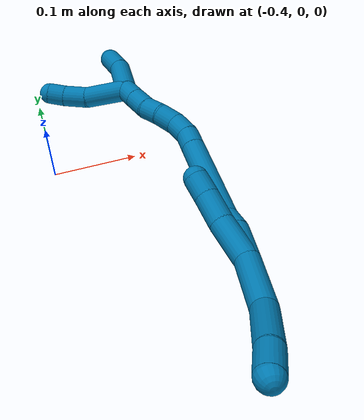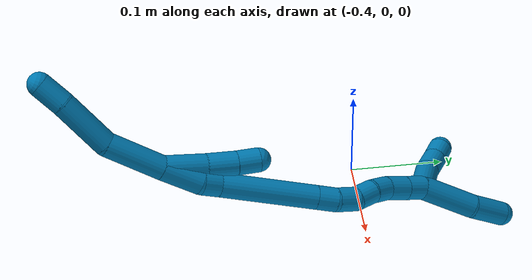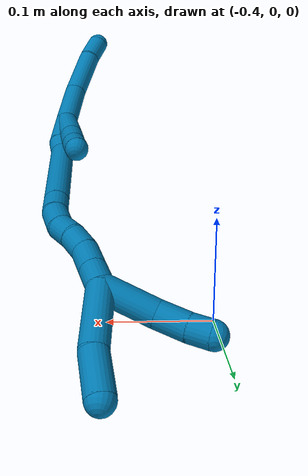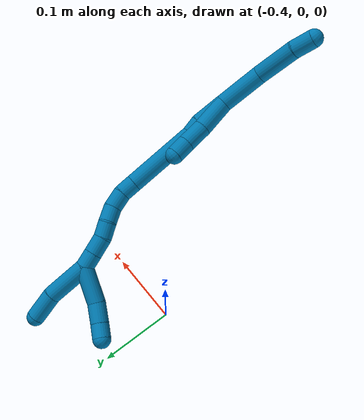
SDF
<sdf version="1.7">
 <world name="default">
  <model name="9">
   <static>0</static>
   <link name="9">
    <collision name="collision-cylinder-e_1_2_8">
     <pose>-0.001383 0.000201 0.030885 -0.006504 -0.044745 0.000146</pose>
     <geometry><cylinder><radius>0.0125</radius><length>0.061833</length></cylinder></geometry>
     <surface>
      <friction><ode><mu>1.16</mu><mu2>1.16</mu2><slip1>0</slip1><slip2>0</slip2></ode></friction>
      <contact><ode><kp>1e+06</kp><kd>1</kd><max_vel>0</max_vel><min_depth>0.001</min_depth></ode></contact>
     </surface>
    </collision>
    <visual name="visual-cylinder-e_1_2_8">
     <pose>-0.001383 0.000201 0.030885 -0.006504 -0.044745 0.000146</pose>
     <geometry><cylinder><radius>0.0125</radius><length>0.061833</length></cylinder></geometry>
     <material><ambient>0 0.490196 0.709804 1</ambient></material>
    </visual>
    <collision name="collision-cylinder-e_2_8_9">
     <pose>-0.001224 0.010143 0.089464 -0.338248 0.052462 -0.00896</pose>
     <geometry><cylinder><radius>0.0125</radius><length>0.058795</length></cylinder></geometry>
     <surface>
      <friction><ode><mu>1.16</mu><mu2>1.16</mu2><slip1>0</slip1><slip2>0</slip2></ode></friction>
      <contact><ode><kp>1e+06</kp><kd>1</kd><max_vel>0</max_vel><min_depth>0.001</min_depth></ode></contact>
     </surface>
    </collision>
    <visual name="visual-cylinder-e_2_8_9">
     <pose>-0.001224 0.010143 0.089464 -0.338248 0.052462 -0.00896</pose>
     <geometry><cylinder><radius>0.0125</radius><length>0.058795</length></cylinder></geometry>
     <material><ambient>0 0.490196 0.709804 1</ambient></material>
    </visual>
    <collision name="collision-cylinder-e_3_9_6">
     <pose>-0.000978 0.024345 0.131089 -0.309811 -0.088293 0.013796</pose>
     <geometry><cylinder><radius>0.0125</radius><length>0.029372</length></cylinder></geometry>
     <surface>
      <friction><ode><mu>1.16</mu><mu2>1.16</mu2><slip1>0</slip1><slip2>0</slip2></ode></friction>
      <contact><ode><kp>1e+06</kp><kd>1</kd><max_vel>0</max_vel><min_depth>0.001</min_depth></ode></contact>
     </surface>
    </collision>
    <visual name="visual-cylinder-e_3_9_6">
     <pose>-0.000978 0.024345 0.131089 -0.309811 -0.088293 0.013796</pose>
     <geometry><cylinder><radius>0.0125</radius><length>0.029372</length></cylinder></geometry>
     <material><ambient>0 0.490196 0.709804 1</ambient></material>
    </visual>
    <collision name="collision-cylinder-e_1_2_10">
     <pose>0.000515 0.009408 -0.020595 -2.7131 0.022723 -0.10434</pose>
     <geometry><cylinder><radius>0.0125</radius><length>0.045297</length></cylinder></geometry>
     <surface>
      <friction><ode><mu>1.16</mu><mu2>1.16</mu2><slip1>0</slip1><slip2>0</slip2></ode></friction>
      <contact><ode><kp>1e+06</kp><kd>1</kd><max_vel>0</max_vel><min_depth>0.001</min_depth></ode></contact>
     </surface>
    </collision>
    <visual name="visual-cylinder-e_1_2_10">
     <pose>0.000515 0.009408 -0.020595 -2.7131 0.022723 -0.10434</pose>
     <geometry><cylinder><radius>0.0125</radius><length>0.045297</length></cylinder></geometry>
     <material><ambient>0 0.490196 0.709804 1</ambient></material>
    </visual>
    <collision name="collision-cylinder-e_2_10_11">
     <pose>0.003101 0.025842 -0.0552 -2.67677 0.13143 -0.542384</pose>
     <geometry><cylinder><radius>0.0125</radius><length>0.031618</length></cylinder></geometry>
     <surface>
      <friction><ode><mu>1.16</mu><mu2>1.16</mu2><slip1>0</slip1><slip2>0</slip2></ode></friction>
      <contact><ode><kp>1e+06</kp><kd>1</kd><max_vel>0</max_vel><min_depth>0.001</min_depth></ode></contact>
     </surface>
    </collision>
    <visual name="visual-cylinder-e_2_10_11">
     <pose>0.003101 0.025842 -0.0552 -2.67677 0.13143 -0.542384</pose>
     <geometry><cylinder><radius>0.0125</radius><length>0.031618</length></cylinder></geometry>
     <material><ambient>0 0.490196 0.709804 1</ambient></material>
    </visual>
    <collision name="collision-cylinder-e_3_11_5">
     <pose>0.006691 0.038593 -0.079117 -2.61754 0.131891 -0.48288</pose>
     <geometry><cylinder><radius>0.0125</radius><length>0.023086</length></cylinder></geometry>
     <surface>
      <friction><ode><mu>1.16</mu><mu2>1.16</mu2><slip1>0</slip1><slip2>0</slip2></ode></friction>
      <contact><ode><kp>1e+06</kp><kd>1</kd><max_vel>0</max_vel><min_depth>0.001</min_depth></ode></contact>
     </surface>
    </collision>
    <visual name="visual-cylinder-e_3_11_5">
     <pose>0.006691 0.038593 -0.079117 -2.61754 0.131891 -0.48288</pose>
     <geometry><cylinder><radius>0.0125</radius><length>0.023086</length></cylinder></geometry>
     <material><ambient>0 0.490196 0.709804 1</ambient></material>
    </visual>
    <collision name="collision-cylinder-e_1_2_12">
     <pose>0.001035 0.000529 -0.020907 -3.11628 0.049447 -2.19533</pose>
     <geometry><cylinder><radius>0.0125</radius><length>0.041878</length></cylinder></geometry>
     <surface>
      <friction><ode><mu>1.16</mu><mu2>1.16</mu2><slip1>0</slip1><slip2>0</slip2></ode></friction>
      <contact><ode><kp>1e+06</kp><kd>1</kd><max_vel>0</max_vel><min_depth>0.001</min_depth></ode></contact>
     </surface>
    </collision>
    <visual name="visual-cylinder-e_1_2_12">
     <pose>0.001035 0.000529 -0.020907 -3.11628 0.049447 -2.19533</pose>
     <geometry><cylinder><radius>0.0125</radius><length>0.041878</length></cylinder></geometry>
     <material><ambient>0 0.490196 0.709804 1</ambient></material>
    </visual>
    <collision name="collision-cylinder-e_2_12_13">
     <pose>0.001059 0.003857 -0.051515 -2.8608 -0.099781 0.679237</pose>
     <geometry><cylinder><radius>0.0125</radius><length>0.020295</length></cylinder></geometry>
     <surface>
      <friction><ode><mu>1.16</mu><mu2>1.16</mu2><slip1>0</slip1><slip2>0</slip2></ode></friction>
      <contact><ode><kp>1e+06</kp><kd>1</kd><max_vel>0</max_vel><min_depth>0.001</min_depth></ode></contact>
     </surface>
    </collision>
    <visual name="visual-cylinder-e_2_12_13">
     <pose>0.001059 0.003857 -0.051515 -2.8608 -0.099781 0.679237</pose>
     <geometry><cylinder><radius>0.0125</radius><length>0.020295</length></cylinder></geometry>
     <material><ambient>0 0.490196 0.709804 1</ambient></material>
    </visual>
    <collision name="collision-cylinder-e_3_13_14">
     <pose>0.005395 0.019208 -0.110468 -2.89203 0.104815 -0.792173</pose>
     <geometry><cylinder><radius>0.0125</radius><length>0.102212</length></cylinder></geometry>
     <surface>
      <friction><ode><mu>1.16</mu><mu2>1.16</mu2><slip1>0</slip1><slip2>0</slip2></ode></friction>
      <contact><ode><kp>1e+06</kp><kd>1</kd><max_vel>0</max_vel><min_depth>0.001</min_depth></ode></contact>
     </surface>
    </collision>
    <visual name="visual-cylinder-e_3_13_14">
     <pose>0.005395 0.019208 -0.110468 -2.89203 0.104815 -0.792173</pose>
     <geometry><cylinder><radius>0.0125</radius><length>0.102212</length></cylinder></geometry>
     <material><ambient>0 0.490196 0.709804 1</ambient></material>
    </visual>
    <collision name="collision-cylinder-e_4_14_15">
     <pose>0.011844 0.034341 -0.169942 -2.89444 0.10416 -0.794686</pose>
     <geometry><cylinder><radius>0.0125</radius><length>0.021203</length></cylinder></geometry>
     <surface>
      <friction><ode><mu>1.16</mu><mu2>1.16</mu2><slip1>0</slip1><slip2>0</slip2></ode></friction>
      <contact><ode><kp>1e+06</kp><kd>1</kd><max_vel>0</max_vel><min_depth>0.001</min_depth></ode></contact>
     </surface>
    </collision>
    <visual name="visual-cylinder-e_4_14_15">
     <pose>0.011844 0.034341 -0.169942 -2.89444 0.10416 -0.794686</pose>
     <geometry><cylinder><radius>0.0125</radius><length>0.021203</length></cylinder></geometry>
     <material><ambient>0 0.490196 0.709804 1</ambient></material>
    </visual>
    <collision name="collision-cylinder-e_5_15_16">
     <pose>0.011565 0.041781 -0.19092 -2.71706 -0.116543 0.52871</pose>
     <geometry><cylinder><radius>0.0125</radius><length>0.023764</length></cylinder></geometry>
     <surface>
      <friction><ode><mu>1.16</mu><mu2>1.16</mu2><slip1>0</slip1><slip2>0</slip2></ode></friction>
      <contact><ode><kp>1e+06</kp><kd>1</kd><max_vel>0</max_vel><min_depth>0.001</min_depth></ode></contact>
     </surface>
    </collision>
    <visual name="visual-cylinder-e_5_15_16">
     <pose>0.011565 0.041781 -0.19092 -2.71706 -0.116543 0.52871</pose>
     <geometry><cylinder><radius>0.0125</radius><length>0.023764</length></cylinder></geometry>
     <material><ambient>0 0.490196 0.709804 1</ambient></material>
    </visual>
    <collision name="collision-cylinder-e_6_16_17">
     <pose>0.007497 0.053969 -0.209638 -2.3979 -0.243344 0.607656</pose>
     <geometry><cylinder><radius>0.0125</radius><length>0.0223</length></cylinder></geometry>
     <surface>
      <friction><ode><mu>1.16</mu><mu2>1.16</mu2><slip1>0</slip1><slip2>0</slip2></ode></friction>
      <contact><ode><kp>1e+06</kp><kd>1</kd><max_vel>0</max_vel><min_depth>0.001</min_depth></ode></contact>
     </surface>
    </collision>
    <visual name="visual-cylinder-e_6_16_17">
     <pose>0.007497 0.053969 -0.209638 -2.3979 -0.243344 0.607656</pose>
     <geometry><cylinder><radius>0.0125</radius><length>0.0223</length></cylinder></geometry>
     <material><ambient>0 0.490196 0.709804 1</ambient></material>
    </visual>
    <collision name="collision-cylinder-e_7_17_18">
     <pose>0.001012 0.066746 -0.226152 -2.57398 -0.358384 1.11144</pose>
     <geometry><cylinder><radius>0.0125</radius><length>0.021653</length></cylinder></geometry>
     <surface>
      <friction><ode><mu>1.16</mu><mu2>1.16</mu2><slip1>0</slip1><slip2>0</slip2></ode></friction>
      <contact><ode><kp>1e+06</kp><kd>1</kd><max_vel>0</max_vel><min_depth>0.001</min_depth></ode></contact>
     </surface>
    </collision>
    <visual name="visual-cylinder-e_7_17_18">
     <pose>0.001012 0.066746 -0.226152 -2.57398 -0.358384 1.11144</pose>
     <geometry><cylinder><radius>0.0125</radius><length>0.021653</length></cylinder></geometry>
     <material><ambient>0 0.490196 0.709804 1</ambient></material>
    </visual>
    <collision name="collision-cylinder-e_8_18_19">
     <pose>-0.004906 0.076863 -0.245841 -2.74493 -0.173857 0.818308</pose>
     <geometry><cylinder><radius>0.0125</radius><length>0.024526</length></cylinder></geometry>
     <surface>
      <friction><ode><mu>1.16</mu><mu2>1.16</mu2><slip1>0</slip1><slip2>0</slip2></ode></friction>
      <contact><ode><kp>1e+06</kp><kd>1</kd><max_vel>0</max_vel><min_depth>0.001</min_depth></ode></contact>
     </surface>
    </collision>
    <visual name="visual-cylinder-e_8_18_19">
     <pose>-0.004906 0.076863 -0.245841 -2.74493 -0.173857 0.818308</pose>
     <geometry><cylinder><radius>0.0125</radius><length>0.024526</length></cylinder></geometry>
     <material><ambient>0 0.490196 0.709804 1</ambient></material>
    </visual>
    <collision name="collision-cylinder-e_9_19_1">
     <pose>-0.008727 0.085937 -0.267008 -2.7274 -0.153959 0.703668</pose>
     <geometry><cylinder><radius>0.0125</radius><length>0.022168</length></cylinder></geometry>
     <surface>
      <friction><ode><mu>1.16</mu><mu2>1.16</mu2><slip1>0</slip1><slip2>0</slip2></ode></friction>
      <contact><ode><kp>1e+06</kp><kd>1</kd><max_vel>0</max_vel><min_depth>0.001</min_depth></ode></contact>
     </surface>
    </collision>
    <visual name="visual-cylinder-e_9_19_1">
     <pose>-0.008727 0.085937 -0.267008 -2.7274 -0.153959 0.703668</pose>
     <geometry><cylinder><radius>0.0125</radius><length>0.022168</length></cylinder></geometry>
     <material><ambient>0 0.490196 0.709804 1</ambient></material>
    </visual>
    <collision name="collision-cylinder-e_1_1_20">
     <pose>-0.030053 0.104234 -0.285275 -2.10628 -0.882278 1.38455</pose>
     <geometry><cylinder><radius>0.0125</radius><length>0.050833</length></cylinder></geometry>
     <surface>
      <friction><ode><mu>1.16</mu><mu2>1.16</mu2><slip1>0</slip1><slip2>0</slip2></ode></friction>
      <contact><ode><kp>1e+06</kp><kd>1</kd><max_vel>0</max_vel><min_depth>0.001</min_depth></ode></contact>
     </surface>
    </collision>
    <visual name="visual-cylinder-e_1_1_20">
     <pose>-0.030053 0.104234 -0.285275 -2.10628 -0.882278 1.38455</pose>
     <geometry><cylinder><radius>0.0125</radius><length>0.050833</length></cylinder></geometry>
     <material><ambient>0 0.490196 0.709804 1</ambient></material>
    </visual>
    <collision name="collision-cylinder-e_2_20_21">
     <pose>-0.058301 0.127985 -0.299246 -2.09719 -0.64722 1.05537</pose>
     <geometry><cylinder><radius>0.0125</radius><length>0.028594</length></cylinder></geometry>
     <surface>
      <friction><ode><mu>1.16</mu><mu2>1.16</mu2><slip1>0</slip1><slip2>0</slip2></ode></friction>
      <contact><ode><kp>1e+06</kp><kd>1</kd><max_vel>0</max_vel><min_depth>0.001</min_depth></ode></contact>
     </surface>
    </collision>
    <visual name="visual-cylinder-e_2_20_21">
     <pose>-0.058301 0.127985 -0.299246 -2.09719 -0.64722 1.05537</pose>
     <geometry><cylinder><radius>0.0125</radius><length>0.028594</length></cylinder></geometry>
     <material><ambient>0 0.490196 0.709804 1</ambient></material>
    </visual>
    <collision name="collision-cylinder-e_3_21_4">
     <pose>-0.072261 0.145833 -0.308652 -2.00219 -0.54575 0.823817</pose>
     <geometry><cylinder><radius>0.0125</radius><length>0.020573</length></cylinder></geometry>
     <surface>
      <friction><ode><mu>1.16</mu><mu2>1.16</mu2><slip1>0</slip1><slip2>0</slip2></ode></friction>
      <contact><ode><kp>1e+06</kp><kd>1</kd><max_vel>0</max_vel><min_depth>0.001</min_depth></ode></contact>
     </surface>
    </collision>
    <visual name="visual-cylinder-e_3_21_4">
     <pose>-0.072261 0.145833 -0.308652 -2.00219 -0.54575 0.823817</pose>
     <geometry><cylinder><radius>0.0125</radius><length>0.020573</length></cylinder></geometry>
     <material><ambient>0 0.490196 0.709804 1</ambient></material>
    </visual>
    <collision name="collision-cylinder-e_1_1_22">
     <pose>-0.009872 0.091772 -0.307419 -3.09466 0.018233 -0.740946</pose>
     <geometry><cylinder><radius>0.0125</radius><length>0.060846</length></cylinder></geometry>
     <surface>
      <friction><ode><mu>1.16</mu><mu2>1.16</mu2><slip1>0</slip1><slip2>0</slip2></ode></friction>
      <contact><ode><kp>1e+06</kp><kd>1</kd><max_vel>0</max_vel><min_depth>0.001</min_depth></ode></contact>
     </surface>
    </collision>
    <visual name="visual-cylinder-e_1_1_22">
     <pose>-0.009872 0.091772 -0.307419 -3.09466 0.018233 -0.740946</pose>
     <geometry><cylinder><radius>0.0125</radius><length>0.060846</length></cylinder></geometry>
     <material><ambient>0 0.490196 0.709804 1</ambient></material>
    </visual>
    <collision name="collision-cylinder-e_2_22_3">
     <pose>-0.012421 0.09666 -0.356821 -2.96161 -0.159178 1.44769</pose>
     <geometry><cylinder><radius>0.0125</radius><length>0.039154</length></cylinder></geometry>
     <surface>
      <friction><ode><mu>1.16</mu><mu2>1.16</mu2><slip1>0</slip1><slip2>0</slip2></ode></friction>
      <contact><ode><kp>1e+06</kp><kd>1</kd><max_vel>0</max_vel><min_depth>0.001</min_depth></ode></contact>
     </surface>
    </collision>
    <visual name="visual-cylinder-e_2_22_3">
     <pose>-0.012421 0.09666 -0.356821 -2.96161 -0.159178 1.44769</pose>
     <geometry><cylinder><radius>0.0125</radius><length>0.039154</length></cylinder></geometry>
     <material><ambient>0 0.490196 0.709804 1</ambient></material>
    </visual>
    <collision name="collision-sphere-3">
     <pose>-0.015524 0.10012 -0.375838 0 -0 0</pose>
     <geometry><sphere><radius>0.0125</radius></sphere></geometry>
     <surface>
      <friction><ode><mu>1.16</mu><mu2>1.16</mu2><slip1>0</slip1><slip2>0</slip2></ode></friction>
      <contact><ode><kp>1e+06</kp><kd>1</kd><max_vel>0</max_vel><min_depth>0.001</min_depth></ode></contact>
     </surface>
    </collision>
    <visual name="visual-sphere-3">
     <pose>-0.015524 0.10012 -0.375838 0 -0 0</pose>
     <geometry><sphere><radius>0.0125</radius></sphere></geometry>
     <material><ambient>0 0.490196 0.709804 1</ambient></material>
    </visual>
    <collision name="collision-sphere-22">
     <pose>-0.009318 0.093199 -0.337803 0 -0 0</pose>
     <geometry><sphere><radius>0.0125</radius></sphere></geometry>
     <surface>
      <friction><ode><mu>1.16</mu><mu2>1.16</mu2><slip1>0</slip1><slip2>0</slip2></ode></friction>
      <contact><ode><kp>1e+06</kp><kd>1</kd><max_vel>0</max_vel><min_depth>0.001</min_depth></ode></contact>
     </surface>
    </collision>
    <visual name="visual-sphere-22">
     <pose>-0.009318 0.093199 -0.337803 0 -0 0</pose>
     <geometry><sphere><radius>0.0125</radius></sphere></geometry>
     <material><ambient>0 0.490196 0.709804 1</ambient></material>
    </visual>
    <collision name="collision-sphere-4">
     <pose>-0.0776 0.15382 -0.312329 0 -0 0</pose>
     <geometry><sphere><radius>0.0125</radius></sphere></geometry>
     <surface>
      <friction><ode><mu>1.16</mu><mu2>1.16</mu2><slip1>0</slip1><slip2>0</slip2></ode></friction>
      <contact><ode><kp>1e+06</kp><kd>1</kd><max_vel>0</max_vel><min_depth>0.001</min_depth></ode></contact>
     </surface>
    </collision>
    <visual name="visual-sphere-4">
     <pose>-0.0776 0.15382 -0.312329 0 -0 0</pose>
     <geometry><sphere><radius>0.0125</radius></sphere></geometry>
     <material><ambient>0 0.490196 0.709804 1</ambient></material>
    </visual>
    <collision name="collision-sphere-21">
     <pose>-0.066921 0.137846 -0.304976 0 -0 0</pose>
     <geometry><sphere><radius>0.0125</radius></sphere></geometry>
     <surface>
      <friction><ode><mu>1.16</mu><mu2>1.16</mu2><slip1>0</slip1><slip2>0</slip2></ode></friction>
      <contact><ode><kp>1e+06</kp><kd>1</kd><max_vel>0</max_vel><min_depth>0.001</min_depth></ode></contact>
     </surface>
    </collision>
    <visual name="visual-sphere-21">
     <pose>-0.066921 0.137846 -0.304976 0 -0 0</pose>
     <geometry><sphere><radius>0.0125</radius></sphere></geometry>
     <material><ambient>0 0.490196 0.709804 1</ambient></material>
    </visual>
    <collision name="collision-sphere-20">
     <pose>-0.04968 0.118123 -0.293515 0 -0 0</pose>
     <geometry><sphere><radius>0.0125</radius></sphere></geometry>
     <surface>
      <friction><ode><mu>1.16</mu><mu2>1.16</mu2><slip1>0</slip1><slip2>0</slip2></ode></friction>
      <contact><ode><kp>1e+06</kp><kd>1</kd><max_vel>0</max_vel><min_depth>0.001</min_depth></ode></contact>
     </surface>
    </collision>
    <visual name="visual-sphere-20">
     <pose>-0.04968 0.118123 -0.293515 0 -0 0</pose>
     <geometry><sphere><radius>0.0125</radius></sphere></geometry>
     <material><ambient>0 0.490196 0.709804 1</ambient></material>
    </visual>
    <collision name="collision-sphere-11">
     <pose>0.005173 0.032867 -0.06921 0 -0 0</pose>
     <geometry><sphere><radius>0.0125</radius></sphere></geometry>
     <surface>
      <friction><ode><mu>1.16</mu><mu2>1.16</mu2><slip1>0</slip1><slip2>0</slip2></ode></friction>
      <contact><ode><kp>1e+06</kp><kd>1</kd><max_vel>0</max_vel><min_depth>0.001</min_depth></ode></contact>
     </surface>
    </collision>
    <visual name="visual-sphere-11">
     <pose>0.005173 0.032867 -0.06921 0 -0 0</pose>
     <geometry><sphere><radius>0.0125</radius></sphere></geometry>
     <material><ambient>0 0.490196 0.709804 1</ambient></material>
    </visual>
    <collision name="collision-sphere-10">
     <pose>0.001029 0.018816 -0.041191 0 -0 0</pose>
     <geometry><sphere><radius>0.0125</radius></sphere></geometry>
     <surface>
      <friction><ode><mu>1.16</mu><mu2>1.16</mu2><slip1>0</slip1><slip2>0</slip2></ode></friction>
      <contact><ode><kp>1e+06</kp><kd>1</kd><max_vel>0</max_vel><min_depth>0.001</min_depth></ode></contact>
     </surface>
    </collision>
    <visual name="visual-sphere-10">
     <pose>0.001029 0.018816 -0.041191 0 -0 0</pose>
     <geometry><sphere><radius>0.0125</radius></sphere></geometry>
     <material><ambient>0 0.490196 0.709804 1</ambient></material>
    </visual>
    <collision name="collision-sphere-6">
     <pose>-0.002273 0.028805 0.145022 0 -0 0</pose>
     <geometry><sphere><radius>0.0125</radius></sphere></geometry>
     <surface>
      <friction><ode><mu>1.16</mu><mu2>1.16</mu2><slip1>0</slip1><slip2>0</slip2></ode></friction>
      <contact><ode><kp>1e+06</kp><kd>1</kd><max_vel>0</max_vel><min_depth>0.001</min_depth></ode></contact>
     </surface>
    </collision>
    <visual name="visual-sphere-6">
     <pose>-0.002273 0.028805 0.145022 0 -0 0</pose>
     <geometry><sphere><radius>0.0125</radius></sphere></geometry>
     <material><ambient>0 0.490196 0.709804 1</ambient></material>
    </visual>
    <collision name="collision-sphere-9">
     <pose>0.000317 0.019885 0.117157 0 -0 0</pose>
     <geometry><sphere><radius>0.0125</radius></sphere></geometry>
     <surface>
      <friction><ode><mu>1.16</mu><mu2>1.16</mu2><slip1>0</slip1><slip2>0</slip2></ode></friction>
      <contact><ode><kp>1e+06</kp><kd>1</kd><max_vel>0</max_vel><min_depth>0.001</min_depth></ode></contact>
     </surface>
    </collision>
    <visual name="visual-sphere-9">
     <pose>0.000317 0.019885 0.117157 0 -0 0</pose>
     <geometry><sphere><radius>0.0125</radius></sphere></geometry>
     <material><ambient>0 0.490196 0.709804 1</ambient></material>
    </visual>
    <collision name="collision-sphere-2">
     <geometry><sphere><radius>0.0125</radius></sphere></geometry>
     <surface>
      <friction><ode><mu>1.16</mu><mu2>1.16</mu2><slip1>0</slip1><slip2>0</slip2></ode></friction>
      <contact><ode><kp>1e+06</kp><kd>1</kd><max_vel>0</max_vel><min_depth>0.001</min_depth></ode></contact>
     </surface>
    </collision>
    <visual name="visual-sphere-2">
     <geometry><sphere><radius>0.0125</radius></sphere></geometry>
     <material><ambient>0 0.490196 0.709804 1</ambient></material>
    </visual>
    <collision name="collision-sphere-19">
     <pose>-0.007028 0.081529 -0.256981 0 -0 0</pose>
     <geometry><sphere><radius>0.0125</radius></sphere></geometry>
     <surface>
      <friction><ode><mu>1.16</mu><mu2>1.16</mu2><slip1>0</slip1><slip2>0</slip2></ode></friction>
      <contact><ode><kp>1e+06</kp><kd>1</kd><max_vel>0</max_vel><min_depth>0.001</min_depth></ode></contact>
     </surface>
    </collision>
    <visual name="visual-sphere-19">
     <pose>-0.007028 0.081529 -0.256981 0 -0 0</pose>
     <geometry><sphere><radius>0.0125</radius></sphere></geometry>
     <material><ambient>0 0.490196 0.709804 1</ambient></material>
    </visual>
    <collision name="collision-sphere-8">
     <pose>-0.002766 0.000402 0.06177 0 -0 0</pose>
     <geometry><sphere><radius>0.0125</radius></sphere></geometry>
     <surface>
      <friction><ode><mu>1.16</mu><mu2>1.16</mu2><slip1>0</slip1><slip2>0</slip2></ode></friction>
      <contact><ode><kp>1e+06</kp><kd>1</kd><max_vel>0</max_vel><min_depth>0.001</min_depth></ode></contact>
     </surface>
    </collision>
    <visual name="visual-sphere-8">
     <pose>-0.002766 0.000402 0.06177 0 -0 0</pose>
     <geometry><sphere><radius>0.0125</radius></sphere></geometry>
     <material><ambient>0 0.490196 0.709804 1</ambient></material>
    </visual>
    <collision name="collision-sphere-5">
     <pose>0.008209 0.044319 -0.089024 0 -0 0</pose>
     <geometry><sphere><radius>0.0125</radius></sphere></geometry>
     <surface>
      <friction><ode><mu>1.16</mu><mu2>1.16</mu2><slip1>0</slip1><slip2>0</slip2></ode></friction>
      <contact><ode><kp>1e+06</kp><kd>1</kd><max_vel>0</max_vel><min_depth>0.001</min_depth></ode></contact>
     </surface>
    </collision>
    <visual name="visual-sphere-5">
     <pose>0.008209 0.044319 -0.089024 0 -0 0</pose>
     <geometry><sphere><radius>0.0125</radius></sphere></geometry>
     <material><ambient>0 0.490196 0.709804 1</ambient></material>
    </visual>
    <collision name="collision-sphere-12">
     <pose>0.00207 0.001059 -0.041814 0 -0 0</pose>
     <geometry><sphere><radius>0.0125</radius></sphere></geometry>
     <surface>
      <friction><ode><mu>1.16</mu><mu2>1.16</mu2><slip1>0</slip1><slip2>0</slip2></ode></friction>
      <contact><ode><kp>1e+06</kp><kd>1</kd><max_vel>0</max_vel><min_depth>0.001</min_depth></ode></contact>
     </surface>
    </collision>
    <visual name="visual-sphere-12">
     <pose>0.00207 0.001059 -0.041814 0 -0 0</pose>
     <geometry><sphere><radius>0.0125</radius></sphere></geometry>
     <material><ambient>0 0.490196 0.709804 1</ambient></material>
    </visual>
    <collision name="collision-sphere-13">
     <pose>4.8e-05 0.006655 -0.061217 0 -0 0</pose>
     <geometry><sphere><radius>0.0125</radius></sphere></geometry>
     <surface>
      <friction><ode><mu>1.16</mu><mu2>1.16</mu2><slip1>0</slip1><slip2>0</slip2></ode></friction>
      <contact><ode><kp>1e+06</kp><kd>1</kd><max_vel>0</max_vel><min_depth>0.001</min_depth></ode></contact>
     </surface>
    </collision>
    <visual name="visual-sphere-13">
     <pose>4.8e-05 0.006655 -0.061217 0 -0 0</pose>
     <geometry><sphere><radius>0.0125</radius></sphere></geometry>
     <material><ambient>0 0.490196 0.709804 1</ambient></material>
    </visual>
    <collision name="collision-sphere-14">
     <pose>0.010742 0.031761 -0.159718 0 -0 0</pose>
     <geometry><sphere><radius>0.0125</radius></sphere></geometry>
     <surface>
      <friction><ode><mu>1.16</mu><mu2>1.16</mu2><slip1>0</slip1><slip2>0</slip2></ode></friction>
      <contact><ode><kp>1e+06</kp><kd>1</kd><max_vel>0</max_vel><min_depth>0.001</min_depth></ode></contact>
     </surface>
    </collision>
    <visual name="visual-sphere-14">
     <pose>0.010742 0.031761 -0.159718 0 -0 0</pose>
     <geometry><sphere><radius>0.0125</radius></sphere></geometry>
     <material><ambient>0 0.490196 0.709804 1</ambient></material>
    </visual>
    <collision name="collision-sphere-15">
     <pose>0.012946 0.03692 -0.180166 0 -0 0</pose>
     <geometry><sphere><radius>0.0125</radius></sphere></geometry>
     <surface>
      <friction><ode><mu>1.16</mu><mu2>1.16</mu2><slip1>0</slip1><slip2>0</slip2></ode></friction>
      <contact><ode><kp>1e+06</kp><kd>1</kd><max_vel>0</max_vel><min_depth>0.001</min_depth></ode></contact>
     </surface>
    </collision>
    <visual name="visual-sphere-15">
     <pose>0.012946 0.03692 -0.180166 0 -0 0</pose>
     <geometry><sphere><radius>0.0125</radius></sphere></geometry>
     <material><ambient>0 0.490196 0.709804 1</ambient></material>
    </visual>
    <collision name="collision-sphere-16">
     <pose>0.010183 0.046642 -0.201674 0 -0 0</pose>
     <geometry><sphere><radius>0.0125</radius></sphere></geometry>
     <surface>
      <friction><ode><mu>1.16</mu><mu2>1.16</mu2><slip1>0</slip1><slip2>0</slip2></ode></friction>
      <contact><ode><kp>1e+06</kp><kd>1</kd><max_vel>0</max_vel><min_depth>0.001</min_depth></ode></contact>
     </surface>
    </collision>
    <visual name="visual-sphere-16">
     <pose>0.010183 0.046642 -0.201674 0 -0 0</pose>
     <geometry><sphere><radius>0.0125</radius></sphere></geometry>
     <material><ambient>0 0.490196 0.709804 1</ambient></material>
    </visual>
    <collision name="collision-sphere-17">
     <pose>0.00481 0.061295 -0.217603 0 -0 0</pose>
     <geometry><sphere><radius>0.0125</radius></sphere></geometry>
     <surface>
      <friction><ode><mu>1.16</mu><mu2>1.16</mu2><slip1>0</slip1><slip2>0</slip2></ode></friction>
      <contact><ode><kp>1e+06</kp><kd>1</kd><max_vel>0</max_vel><min_depth>0.001</min_depth></ode></contact>
     </surface>
    </collision>
    <visual name="visual-sphere-17">
     <pose>0.00481 0.061295 -0.217603 0 -0 0</pose>
     <geometry><sphere><radius>0.0125</radius></sphere></geometry>
     <material><ambient>0 0.490196 0.709804 1</ambient></material>
    </visual>
    <collision name="collision-sphere-18">
     <pose>-0.002785 0.072197 -0.2347 0 -0 0</pose>
     <geometry><sphere><radius>0.0125</radius></sphere></geometry>
     <surface>
      <friction><ode><mu>1.16</mu><mu2>1.16</mu2><slip1>0</slip1><slip2>0</slip2></ode></friction>
      <contact><ode><kp>1e+06</kp><kd>1</kd><max_vel>0</max_vel><min_depth>0.001</min_depth></ode></contact>
     </surface>
    </collision>
    <visual name="visual-sphere-18">
     <pose>-0.002785 0.072197 -0.2347 0 -0 0</pose>
     <geometry><sphere><radius>0.0125</radius></sphere></geometry>
     <material><ambient>0 0.490196 0.709804 1</ambient></material>
    </visual>
    <collision name="collision-sphere-1">
     <pose>-0.010427 0.090345 -0.277034 0 -0 0</pose>
     <geometry><sphere><radius>0.0125</radius></sphere></geometry>
     <surface>
      <friction><ode><mu>1.16</mu><mu2>1.16</mu2><slip1>0</slip1><slip2>0</slip2></ode></friction>
      <contact><ode><kp>1e+06</kp><kd>1</kd><max_vel>0</max_vel><min_depth>0.001</min_depth></ode></contact>
     </surface>
    </collision>
    <visual name="visual-sphere-1">
     <pose>-0.010427 0.090345 -0.277034 0 -0 0</pose>
     <geometry><sphere><radius>0.0125</radius></sphere></geometry>
     <material><ambient>0 0.490196 0.709804 1</ambient></material>
    </visual>
    <inertial>
     <pose>-0.006215 0.046678 -0.131256 0 -0 0</pose>
     <mass>0.75</mass>
     <inertia>
      <ixx>7.6e-05</ixx>
      <ixy>0</ixy>
      <ixz>0</ixz>
      <iyy>-9.1e-05</iyy>
      <iyz>0</iyz>
      <izz>-7.8e-05</izz>
     </inertia>
    </inertial>
   </link>
   <pose>-0.253355 -0.215047 0.155326 0.84496 -0.708208 0.401624</pose>
  </model>
 </world>
</sdf>
